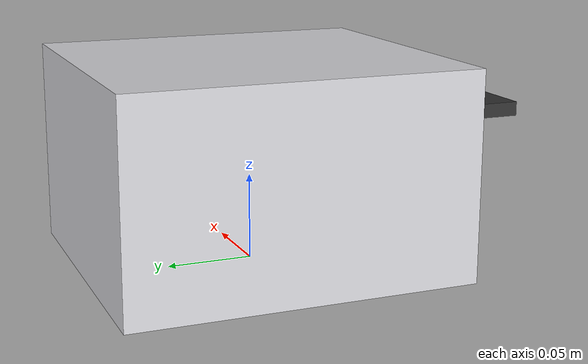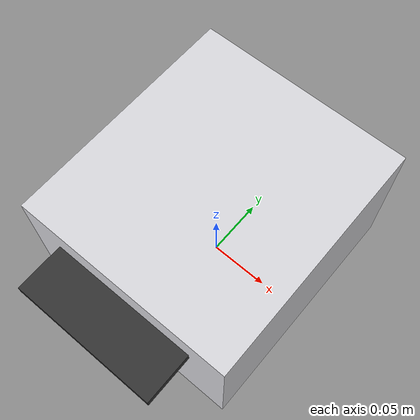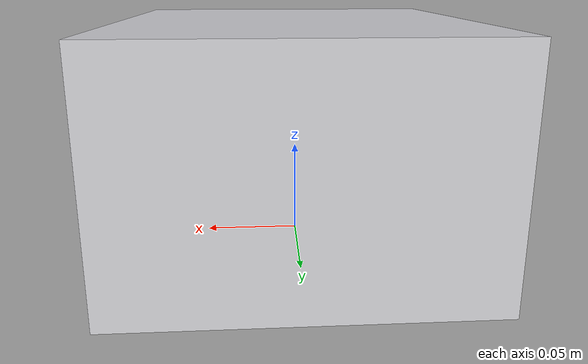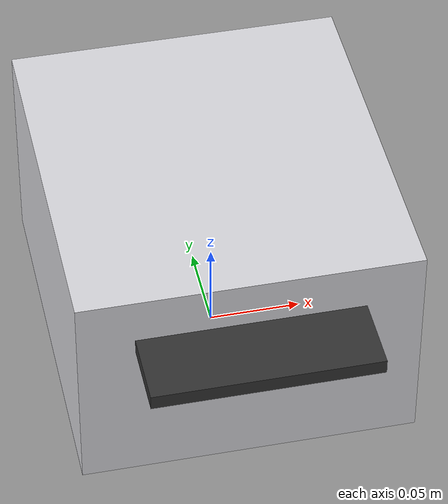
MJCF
<?xml version="1.0" encoding="utf-8"?>
<mujoco model="microplate_reader">
  <compiler angle="radian" autolimits="true"/>
  <default>
    <default class="body"><geom contype="1" conaffinity="1"/></default>
  </default>
  <worldbody>
    <body name="base">
      <geom type="box" size="0.09 0.1 0.06" pos="0 0 0.06" rgba="0.85 0.85 0.87 1" class="body"/>
      <geom type="box" size="0.027 0.005000000000000001 0.015" pos="-0.045 -0.09000000000000001 0.09" rgba="0.9 0.7 0.1 1" class="body"/>
      <body name="plate_tray" pos="0 -0.10 0.09">
        <joint name="plate_tray_joint" type="slide" axis="0 1 0" range="0 0.10" damping="1.0" frictionloss="0.3"/>
  <geom type="box" size="0.06 0.04 0.004" pos="0 0 0" rgba="0.2 0.2 0.2 1" class="body"/>
      </body>
    </body>
  </worldbody>
</mujoco>
